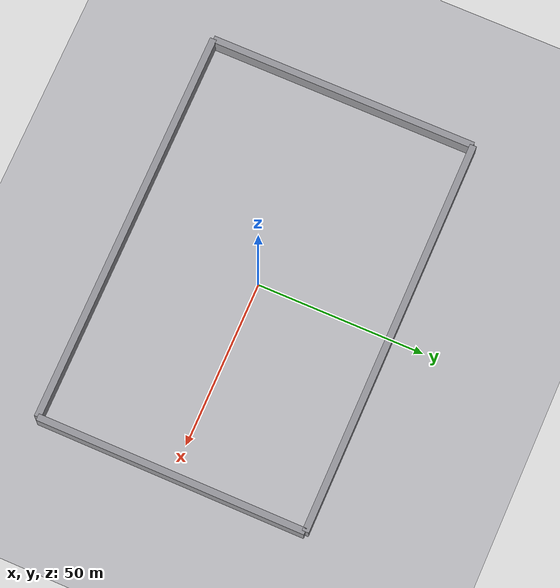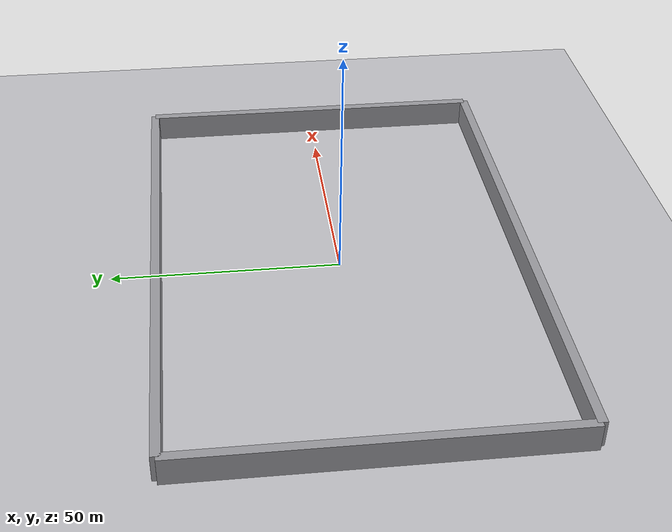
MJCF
<mujoco model="stadium_ground">
  <asset>
    <texture type="2d" name="stadium_floor_tex" builtin="checker" width="1024" height="1024"
      rgb1="0.8 0.8 0.82" rgb2="0.7 0.7 0.72" mark="edge" markrgb="0.9 0.9 0.9"/>
    <material name="stadium_floor" texture="stadium_floor_tex" texuniform="true" texrepeat="80 80"
      reflectance="0.05"/>
    <material name="stadium_wall" rgba="0.6 0.6 0.62 1"/>
  </asset>

  <worldbody>
    <geom name="stadium_floor" type="plane" size="120 120 10" material="stadium_floor"
      friction="1 0.1 0.05"/>
    <geom name="stadium_wall_north" type="box" size="60 1 3" pos="0 40 3" material="stadium_wall"/>
    <geom name="stadium_wall_south" type="box" size="60 1 3" pos="0 -40 3" material="stadium_wall"/>
    <geom name="stadium_wall_east" type="box" size="1 40 3" pos="60 0 3" material="stadium_wall"/>
    <geom name="stadium_wall_west" type="box" size="1 40 3" pos="-60 0 3" material="stadium_wall"/>
  </worldbody>
</mujoco>
